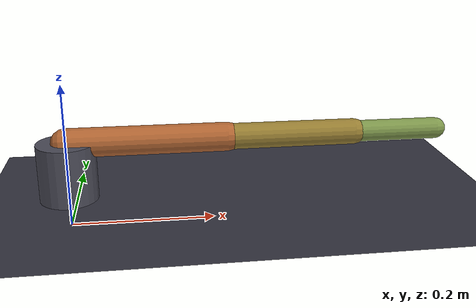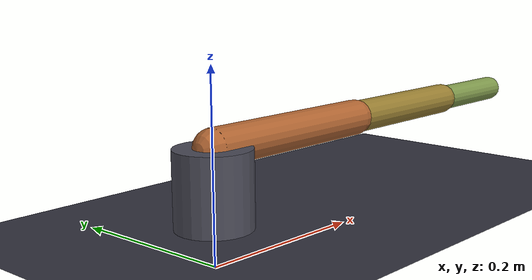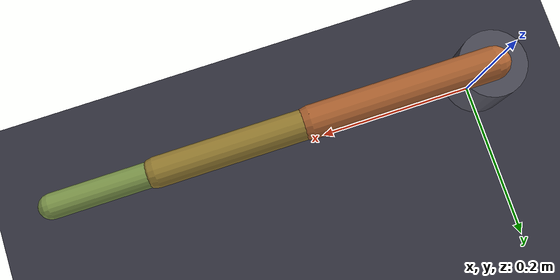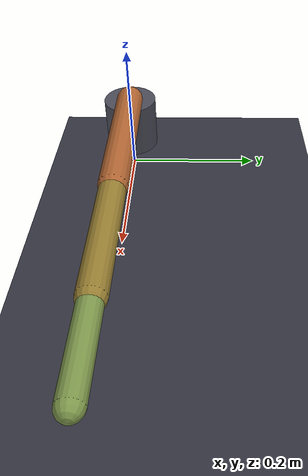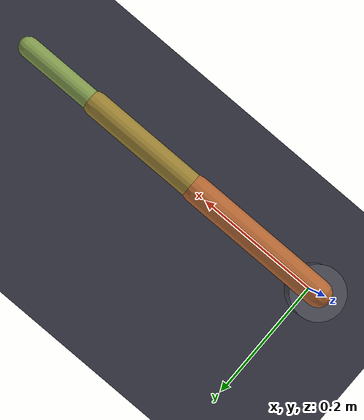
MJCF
<mujoco model="planar_arm">
  <compiler angle="radian" autolimits="true"/>
  <option timestep="0.002" gravity="0 0 -9.81"/>
  <visual>
    <global offwidth="64" offheight="64"/>
  </visual>
  <worldbody>
    <light pos="0 0 2" dir="0 0 -1"/>
    <geom name="floor" type="plane" size="2 2 0.05" rgba="0.2 0.2 0.25 1"/>
    <body name="base" pos="0 0 0.08">
      <geom type="cylinder" size="0.04 0.04" rgba="0.3 0.3 0.35 1" mass="0.4"/>
      <camera name="base_cam" pos="0.6 -0.4 0.4" xyaxes="1 0.4 0 0 0.3 1"/>
      <body name="link1" pos="0 0 0.04">
        <joint name="joint1" type="hinge" axis="0 0 1" range="-1.8 1.8" damping="0.4"/>
        <geom type="capsule" fromto="0 0 0 0.22 0 0" size="0.02" rgba="0.7 0.4 0.2 1" mass="0.35"/>
        <body name="link2" pos="0.22 0 0">
          <joint name="joint2" type="hinge" axis="0 0 1" range="-2.0 2.0" damping="0.3"/>
          <geom type="capsule" fromto="0 0 0 0.18 0 0" size="0.018" rgba="0.6 0.5 0.2 1" mass="0.25"/>
          <body name="link3" pos="0.18 0 0">
            <joint name="joint3" type="hinge" axis="0 0 1" range="-2.2 2.2" damping="0.2"/>
            <geom type="capsule" fromto="0 0 0 0.12 0 0" size="0.015" rgba="0.5 0.6 0.3 1" mass="0.15"/>
            <site name="ee" pos="0.12 0 0" size="0.012" rgba="0.1 0.8 0.2 1"/>
          </body>
        </body>
      </body>
    </body>
  </worldbody>
  <contact>
    <exclude body1="base" body2="link1"/>
    <exclude body1="link1" body2="link2"/>
    <exclude body1="link2" body2="link3"/>
  </contact>
  <actuator>
    <position name="act1" joint="joint1" kp="40" ctrlrange="-1.8 1.8" forcerange="-12 12"/>
    <position name="act2" joint="joint2" kp="30" ctrlrange="-2.0 2.0" forcerange="-8 8"/>
    <position name="act3" joint="joint3" kp="20" ctrlrange="-2.2 2.2" forcerange="-4 4"/>
  </actuator>
</mujoco>
